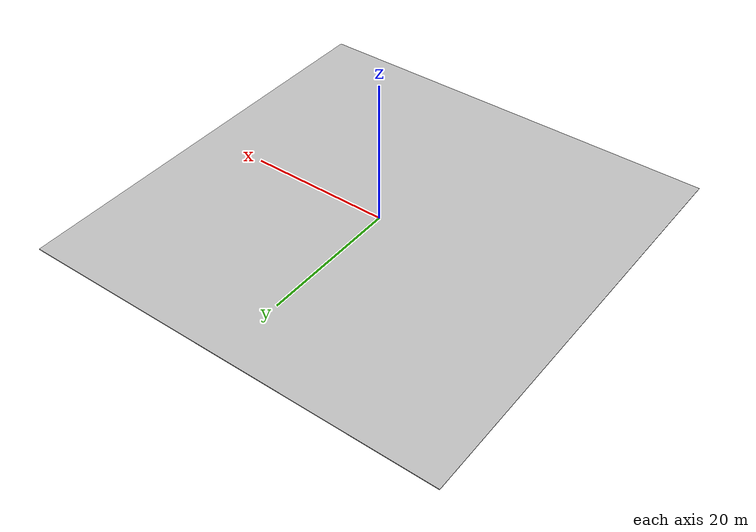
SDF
<?xml version="1.0" ?>
<sdf version="1.5">
  <world name="inspection_world">
    <physics name="default_physics" default="true" type="ode">
      <max_step_size>0.002</max_step_size>
      <real_time_factor>1</real_time_factor>
      <real_time_update_rate>500</real_time_update_rate>
      <ode>
        <solver>
          <type>quick</type>
          <iters>50</iters>
          <sor>0.5</sor>
        </solver>
      </ode>
    </physics>
    <scene>
      <ambient>0.01 0.01 0.01 1.0</ambient>
      <sky>
        <clouds>
          <speed>12</speed>
        </clouds>
      </sky>
      <shadows>1</shadows>
    </scene>

    <!-- Global light sources -->
    <light name='sun' type='directional'>
      <cast_shadows>1</cast_shadows>
      <pose>0 0 10 0 -0 0</pose>
      <diffuse>1.0 1.0 1.0 1</diffuse>
      <specular>0.1 0.1 0.1 1</specular>
      <attenuation>
        <range>1000</range>
        <constant>0.9</constant>
        <linear>0.01</linear>
        <quadratic>0.001</quadratic>
      </attenuation>
      <direction>-0.5 -0.5 -1.0</direction>
    </light>
    <light name='sun_diffuse' type='directional'>
      <cast_shadows>1</cast_shadows>
      <pose>0 0 -10 0 -0 0</pose>
      <diffuse>1.0 1.0 1.0 1</diffuse>
      <specular>0.3 0.3 0.3 1</specular>
      <attenuation>
        <range>1000</range>
        <constant>0.9</constant>
        <linear>0.01</linear>
        <quadratic>0.001</quadratic>
      </attenuation>
      <direction>0.5 0.5 -1.0</direction>
    </light>

    <!-- The water level -->
    <include>
      <uri>model://water_table</uri>
      <pose>0 0 0 0 0 0</pose>
    </include>

    <plugin name="underwater_current_plugin" filename="libuuv_underwater_current_ros_plugin.so">
      <namespace>hydrodynamics</namespace>
      <constant_current>
        <topic>current_velocity</topic>
        <velocity>
          <mean>0</mean>
          <min>0</min>
          <max>5</max>
          <mu>0.0</mu>
          <noiseAmp>0.0</noiseAmp>
        </velocity>

        <horizontal_angle>
          <mean>0</mean>
          <min>-3.141592653589793238</min>
          <max>3.141592653589793238</max>
          <mu>0.0</mu>
          <noiseAmp>0.0</noiseAmp>
        </horizontal_angle>

        <vertical_angle>
          <mean>0</mean>
          <min>-3.141592653589793238</min>
          <max>3.141592653589793238</max>
          <mu>0.0</mu>
          <noiseAmp>0.0</noiseAmp>
        </vertical_angle>
      </constant_current>
    </plugin>

    <plugin name="sc_interface" filename="libuuv_sc_ros_interface_plugin.so"/>

    <!-- Origin placed somewhere in Algonquin Park, Ontario, Canada  -->
    <spherical_coordinates>
      <latitude_deg>45.579262</latitude_deg>
      <longitude_deg>-78.750237</longitude_deg>
      <elevation>600</elevation>
      <heading_deg>0</heading_deg>
    </spherical_coordinates>

    <!-- Point the camera so the robot's in-frame -->
    <gui fullscreen='0'>
      <camera name='user_camera'>
        <pose>22.956600 0.353438 8.717550 0.0 0.411643 -2.922991</pose>
        <view_controller>orbit</view_controller>
      </camera>
    </gui>
  </world>
</sdf>

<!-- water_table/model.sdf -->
<sdf version="1.5">
<model name="water_table">
  <static>true</static>
  <link name="water_table_link">

  <visual name="surface">
    <cast_shadows>false</cast_shadows>
    <pose>0 0 0 0 0 0</pose>
    <geometry>
      <box>
        <size>60 60 .1</size>
      </box>
    </geometry>
    <material>
      <script>
        <uri>file://Media/materials/scripts/water.material</uri>
        <name>UUVSimulator/StaticWater</name>
      </script>
    </material>
  </visual>

  <collision name="water_table">
    <pose>0 0 0 0 0 0</pose>
    <geometry>
      <mesh><uri>model://water_table/meshes/inspection_wide_bridge_more_flattened.dae</uri><scale>1 1 1</scale></mesh>
    </geometry>
  </collision>

  <!--
    NOTE: we do not include a visual here, because doing so would mangle the colours for the world.
    Instead we spawn the ground model separately within the launch file
  -->

  </link>
</model>
</sdf>
